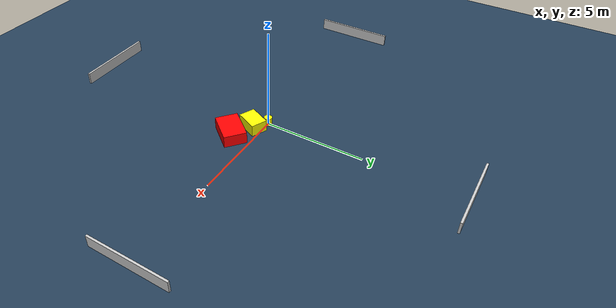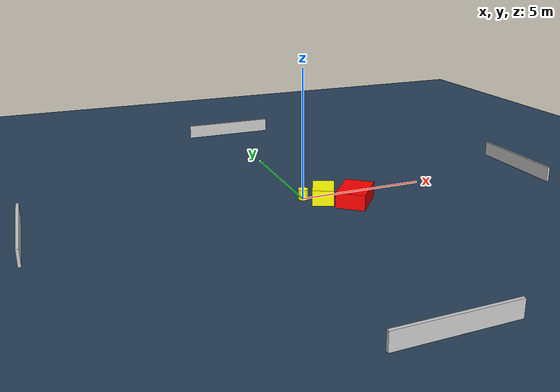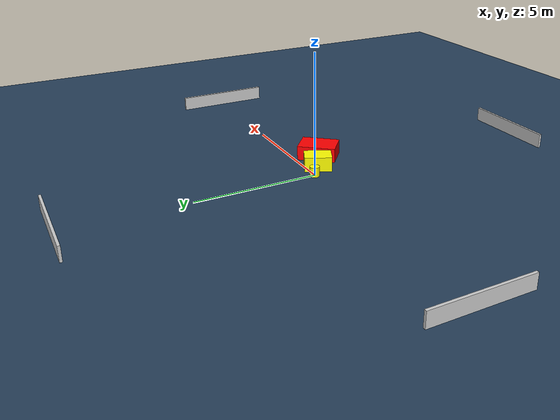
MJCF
<?xml version="1.0" ?>
<mujoco model="generated_environment">
  <option timestep="0.01" integrator="RK4" cone="elliptic"/>
  <default>
    <geom density="1"/>
  </default>
  <asset>
    <texture builtin="gradient" height="3072" name="skybox" rgb1="0.3 0.5 0.7" rgb2="0 0 0" type="skybox" width="512"/>
    <texture builtin="checker" height="300" name="groundplane" rgb1="0.2 0.3 0.4" rgb2="0.1 0.2 0.3" type="2d" width="300"/>
    <material name="groundplane" reflectance="0.2" texrepeat="5 5" texture="groundplane"/>
  </asset>
  <worldbody>
    <light dir="0 0 -1" directional="true" pos="0 0 1.5"/>
    <geom condim="3" friction="0.5 0.005 0.001" material="groundplane" name="floor" pos="0 0 0" size="0 0 0.05" type="plane"/>
    <body name="walls">
      <geom name="wall_1" condim="4" pos="-10.0 0.0 0.3" rgba="0.800000011920929 0.800000011920929 0.800000011920929 1.0" size="0.05 2.0 0.3" type="box"/>
      <geom name="wall_2" condim="4" pos="10.0 0.0 0.3" rgba="0.800000011920929 0.800000011920929 0.800000011920929 1.0" size="0.05 2.0 0.3" type="box"/>
      <geom name="wall_3" condim="4" pos="0.0 -10.0 0.3" rgba="0.800000011920929 0.800000011920929 0.800000011920929 1.0" size="2.0 0.05 0.3" type="box"/>
      <geom name="wall_4" condim="4" pos="0.0 10.0 0.3" rgba="0.800000011920929 0.800000011920929 0.800000011920929 1.0" size="2.0 0.05 0.3" type="box"/>
    </body>
    <body name="robot">
      <joint name="joint_x" type="slide" pos="0 0 0" axis="1 0 0"/>
      <joint name="joint_y" type="slide" pos="0 0 0" axis="0 1 0"/>
      <geom name="robot" type="cylinder" pos="0.0 0.0 0.2" size="0.2 0.2 0.0" mass="5.0" friction="1.0 0.005 0.0001" condim="4" rgba="1.0 1.0 0.0 1.0"/>
    </body>
    <body name="obstacle_1_movable">
      <geom name="obstacle_1_movable" condim="4" pos="0.6257328729437832 -0.47734794106848544 0.3" euler="0 0 65.28355093685596" friction="0.0 0.005 0.001" rgba="1.0 1.0 0.0 1.0" size="0.5566914062534672 0.40678867215297837 0.3" type="box" mass="0.1"/>
      <joint type="free"/>
    </body>
    <body name="obstacle_2_static">
      <geom name="obstacle_2_static" condim="4" pos="1.6577438875406791 -1.0667522121029722 0.3" euler="0 0 320.2320508240373" friction="0.0 0.005 0.001" rgba="1.0 0.0 0.0 1.0" size="0.5565815792047702 0.7864731257415702 0.3" type="box"/>
    </body>
  </worldbody>
  <actuator>
    <motor name="actuator_x" joint="joint_x" gear="1" ctrlrange="-1 1"/>
    <motor name="actuator_y" joint="joint_y" gear="1" ctrlrange="-1 1"/>
  </actuator>
</mujoco>
